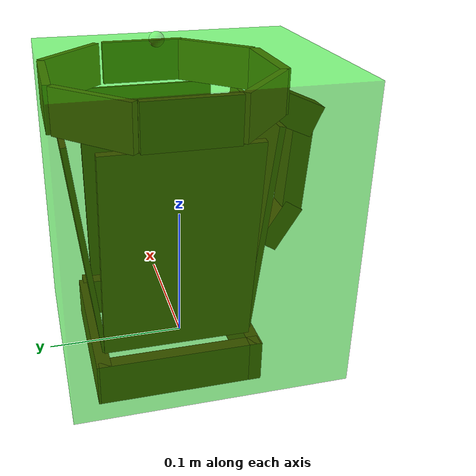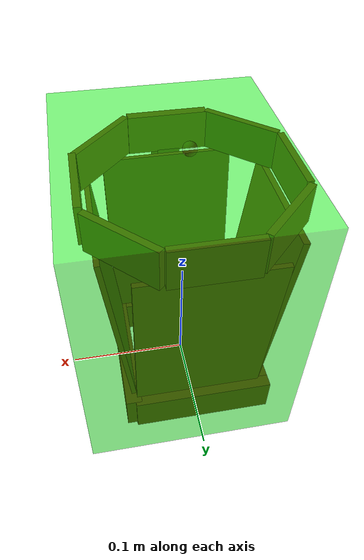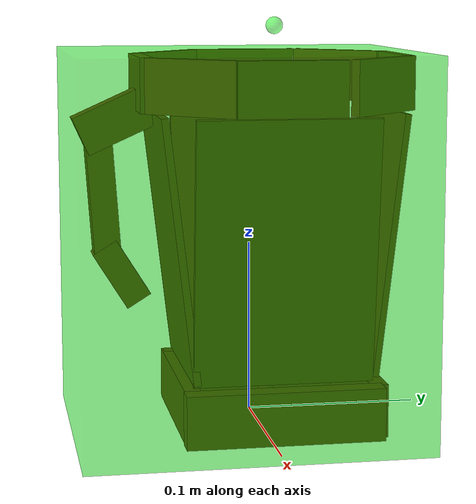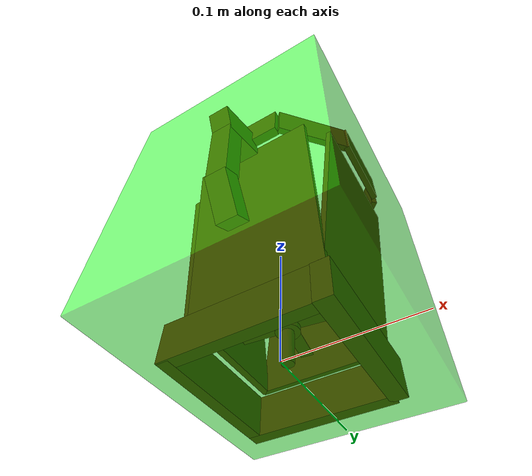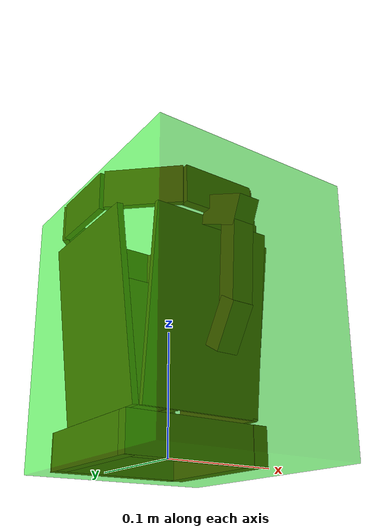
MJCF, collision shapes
<mujoco model="model">
  <option timestep="0.002" gravity="0.0 0.0 -9.81"/>
  <compiler angle="radian"/>
  <asset>
    <mesh file="visuals/blade.obj" name="blade_vis"/>
    <mesh file="visuals/pitcher.obj" name="pitcher_vis"/>
    <mesh file="visuals/pitcher_main.obj" name="pitcher_main_vis"/>
    <texture file="visuals/T_BC001.png" name="pitcher_material" type="2d"/>
    <material name="pitcher_material" rgba="1 1 1 1.0" texture="pitcher_material" shininess="0.2512328028678894" specular="0.3103448502657381"/>
    <material name="pitcher_main_material" rgba="0.034405842423439026 0.034405842423439026 0.034405842423439026 0.800000011920929" shininess="0.2512328028678894" specular="0.3103448502657381"/>
    <texture file="visuals/T_BC001.png" name="blade_material" type="2d"/>
    <material name="blade_material" rgba="1 1 1 1.0" texture="blade_material" shininess="0.2512328028678894" specular="0.3103448502657381"/>
  </asset>
  <default>
    <default class="visual">
      <geom conaffinity="0" contype="0" group="1" type="mesh"/>
    </default>
    <default class="collision">
      <geom group="0" rgba="0.5 0 0 0.5" density="1000" solref="0.004 1" solimp="0.998 0.998 0.001"/>
    </default>
    <default class="spawn">
      <geom group="0" rgba="1 1 1 0.5" contype="0" conaffinity="0"/>
      <site group="0" rgba="1 1 1 0.5"/>
    </default>
    <default class="region">
      <geom group="1" conaffinity="0" contype="0" rgba="0 1 0 0.5" mass="0"/>
    </default>
  </default>
  <worldbody>
    <body>
      <body name="object">
        <body name="pitcher">
          <geom mesh="pitcher_vis" type="mesh" solimp="0.998 0.998 0.001" solref="0.001 1" friction="0.95 0.3 0.1" class="visual" material="pitcher_material"/>
          <geom class="collision" type="box" pos="0.00134067 -0.08578708 0.12840700" size="0.008719570003449917 0.0076684425584971905 0.030896702781319618" quat="0.9994240999221802 0.033934105187654495 0.0 0.0" name="pitcher_handle_1"/>
          <geom class="collision" type="box" pos="0.00136547 -0.07583934 0.08483158" size="0.00874503143131733 0.007932057604193687 0.018651528283953667" quat="0.9616867899894714 0.274150550365448 0.0 0.0" name="pitcher_handle_2"/>
          <geom class="collision" type="box" pos="0.00133902 -0.07917307 0.17285265" size="0.008752253837883472 0.011492143385112286 0.020996490493416786" quat="0.8395240306854248 -0.5433225631713867 -0.0 0.0" name="pitcher_handle_0"/>
          <body name="pitcher_main">
            <geom class="region" type="cylinder" size="0.04105715826153755 0.06909993290901184" pos="-0.00009216 0.01288146 0.10950858" rgba="0 0 1 0.5" name="reg_int"/>
            <geom mesh="pitcher_main_vis" type="mesh" solimp="0.998 0.998 0.001" solref="0.001 1" friction="0.95 0.3 0.1" class="visual" material="pitcher_main_material"/>
            <geom type="box" pos="0.05275339 0.01160286 0.00831912" size="0.006559801287949085 0.057112209498882294 0.015429945662617683" quat="1.0 0.0 0.0 0.0" class="collision"/>
            <geom type="box" pos="-0.00582938 0.06694266 0.00831912" size="0.057111989706754684 0.005001084879040718 0.015429931692779064" quat="1.0 0.0 0.0 0.0" class="collision"/>
            <geom type="box" pos="-0.05833406 0.01328734 0.00831912" size="0.0046172006987035275 0.057111889123916626 0.015429917722940445" quat="1.0 0.0 0.0 0.0" class="collision"/>
            <geom type="box" pos="-0.00583968 -0.04036652 0.00831912" size="0.05711181461811066 0.004630060400813818 0.015429902821779251" quat="1.0 0.0 0.0 0.0" class="collision"/>
            <geom type="box" pos="-0.05982332 0.01383461 0.10319119" size="0.0025632414035499096 0.051372114568948746 0.07540363818407059" quat="0.9983683228492737 1.9271728888270445e-06 -0.05710252374410629 3.367393946973607e-05" class="collision"/>
            <geom type="box" pos="0.00347901 -0.04719132 0.10312437" size="0.0021318390499800444 0.051372114568948746 0.07534198462963104" quat="0.7059291005134583 0.04037894681096077 -0.04037623107433319 0.7059769034385681" class="collision"/>
            <geom type="box" pos="0.06041925 0.01049512 0.10273257" size="0.001973443664610386 0.051372114568948746 0.07576888799667358" quat="3.637487316154875e-05 -0.05710252374410629 -2.0803652205358958e-06 -0.9983683228492737" class="collision"/>
            <geom type="box" pos="-0.00148259 0.07325230 0.10314924" size="0.0018098397413268685 0.051372114568948746 0.07535210251808167" quat="0.7059786319732666 -0.04037610441446304 -0.04037903994321823 -0.7059273719787598" class="collision"/>
            <geom type="box" pos="-0.07420228 0.01028565 0.19438520" size="0.0025598087813705206 0.030356895178556442 0.015429902821779251" quat="1.0 0.0 0.0 0.0" class="collision"/>
            <geom type="box" pos="0.07635693 0.01028565 0.19438520" size="0.0025598090142011642 0.030356895178556442 0.015429902821779251" quat="1.0 0.0 0.0 0.0" class="collision"/>
            <geom type="box" pos="0.05449574 -0.04086027 0.19438520" size="0.002559809945523739 0.030356895178556442 0.015429902821779251" quat="0.9293042421340942 0.0 -0.0 -0.3693150579929352" class="collision"/>
            <geom type="box" pos="0.00205769 -0.06308075 0.19438520" size="0.030433163046836853 0.0037288046441972256 0.015429902821779251" quat="1.0 0.0 0.0 0.0" class="collision"/>
            <geom type="box" pos="-0.05094109 -0.04223305 0.19438520" size="0.002559809945523739 0.030356895178556442 0.015429902821779251" quat="0.4049685597419739 0.0 -0.0 -0.9143306016921997" class="collision"/>
            <geom type="box" pos="-0.05341088 0.06419597 0.19438520" size="0.002559809945523739 0.03035689704120159 0.015429902821779251" quat="0.9234796762466431 0.0 -0.0 -0.3836473524570465" class="collision"/>
            <geom type="box" pos="-0.00054002 0.08750427 0.19438520" size="0.03036731667816639 0.002686205320060253 0.015429902821779251" quat="1.0 0.0 0.0 0.0" class="collision"/>
            <geom type="box" pos="0.05328303 0.06648801 0.19438520" size="0.002559809945523739 0.030356895178556442 0.015429902821779251" quat="0.37978920340538025 0.0 -0.0 -0.9250730872154236" class="collision"/>
            <body name="blade">
              <geom mesh="blade_vis" type="mesh" solimp="0.998 0.998 0.001" solref="0.001 1" friction="0.95 0.3 0.1" class="visual" material="blade_material"/>
              <geom type="cylinder" pos="0.00000000 0.01007370 0.01741993" size="0.004584804177284241 0.013087698258459568" quat="1.0 0.0 0.0 0.0" class="collision"/>
              <geom type="cylinder" pos="0.00000000 0.01007370 0.03248165" size="0.009153613820672035 0.0019740283023566008" quat="1.0 0.0 0.0 0.0" class="collision"/>
              <geom type="cylinder" pos="0.00000000 0.01007370 0.03761567" size="0.002619080478325486 0.0014288165839388967" quat="1.0 0.0 0.0 0.0" class="collision"/>
              <geom type="cylinder" pos="0.00000000 0.01007370 0.03582821" size="0.0038133717607706785 0.00035864306846633554" quat="1.0 0.0 0.0 0.0" class="collision"/>
              <geom type="box" pos="-0.01745919 0.00850269 0.03539590" size="0.01940135285258293 0.004977840930223465 0.00013571526505984366" quat="0.9986625909805298 0.0 0.0 0.05170168727636337" class="collision"/>
              <geom type="box" pos="-0.00122930 0.02742440 0.03539590" size="0.01940135285258293 0.004977840930223465 0.00013571526505984366" quat="0.753109872341156 0.0 -0.0 -0.6578947305679321" class="collision"/>
              <geom type="box" pos="0.01720731 0.01134743 0.03539590" size="0.01940135471522808 0.004977840930223465 0.00013571526505984366" quat="0.06732738763093948 0.0 -0.0 -0.9977309107780457" class="collision"/>
              <geom type="box" pos="0.00163670 -0.00764109 0.03682646" size="0.019401350989937782 0.004977840464562178 0.00013571526505984366" quat="0.6578945517539978 0.0 0.0 0.7531100511550903" class="collision"/>
            </body>
          </body>
        </body>
        <geom class="region" name="reg_bbox" density="0" type="box" pos="0.007286000000000001 -0.0074730000000000005 0.101948" size="0.08431 0.098306 0.11021199999999999"/>
      </body>
      <site rgba="0 1 0 0.5" size="0.005" pos="0.000857 0.014615 0.2263" name="anchor_site"/>
    </body>
  </worldbody>
</mujoco>
